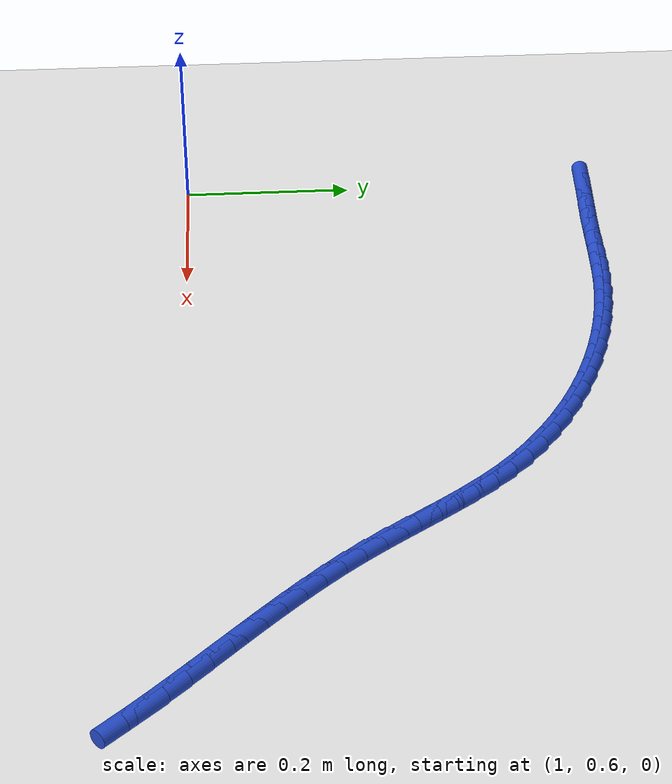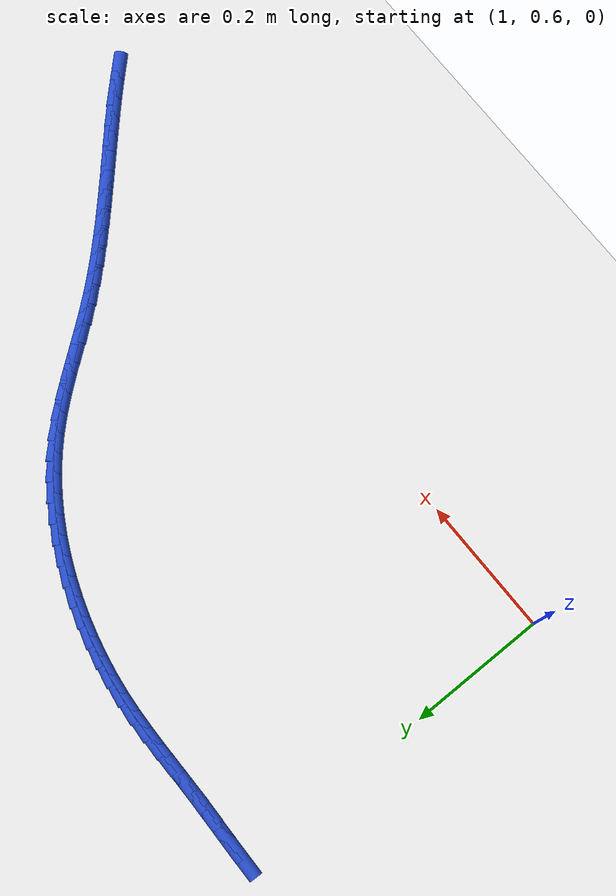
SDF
<sdf version="1.6">
 <world name="default">
  <model name="ground_plane">
   <static>1</static>
   <link name="link">
    <collision name="collision">
     <geometry><plane><normal>0 0 1</normal><size>100 100</size></plane></geometry>
     <surface><friction><ode><mu>100</mu><mu2>50</mu2></ode></friction></surface>
    </collision>
    <visual name="visual">
     <cast_shadows>0</cast_shadows>
     <geometry><plane><normal>0 0 1</normal><size>100 100</size></plane></geometry>
     <material>
      <script><uri>file://media/materials/scripts/gazebo.material</uri><name>Gazebo/WhiteGlow</name></script>
     </material>
    </visual>
   </link>
  </model>
  <model name="line">
   <link name="link_58">
    <pose>1.0199575699789516 1.0951428536316274 0.01 0 1.57 -0.035781900107793495</pose>
    <collision name="collision">
     <geometry><cylinder><radius>0.01</radius><length>0.08</length></cylinder></geometry>
    </collision>
    <visual name="visual">
     <material>
      <script><name>Gazebo/Blue</name><uri>file://media/materials/scripts/gazebo.material</uri></script>
     </material>
     <geometry><cylinder><radius>0.01</radius><length>0.08</length></cylinder></geometry>
    </visual>
   </link>
   <link name="link_59">
    <pose>1.0486025732911959 1.0941174433210548 0.01 0 1.57 -0.04221607428798749</pose>
    <collision name="collision">
     <geometry><cylinder><radius>0.01</radius><length>0.08</length></cylinder></geometry>
    </collision>
    <visual name="visual">
     <material>
      <script><name>Gazebo/Blue</name><uri>file://media/materials/scripts/gazebo.material</uri></script>
     </material>
     <geometry><cylinder><radius>0.01</radius><length>0.08</length></cylinder></geometry>
    </visual>
   </link>
   <link name="link_60">
    <pose>1.0772323687105632 1.0929080872285022 0.01 0 1.57 -0.0401360436025834</pose>
    <collision name="collision">
     <geometry><cylinder><radius>0.01</radius><length>0.08</length></cylinder></geometry>
    </collision>
    <visual name="visual">
     <material>
      <script><name>Gazebo/Blue</name><uri>file://media/materials/scripts/gazebo.material</uri></script>
     </material>
     <geometry><cylinder><radius>0.01</radius><length>0.08</length></cylinder></geometry>
    </visual>
   </link>
   <link name="link_61">
    <pose>1.1057698132064757 1.0917620916836417 0.01 0 1.57 -0.02960711799082537</pose>
    <collision name="collision">
     <geometry><cylinder><radius>0.01</radius><length>0.08</length></cylinder></geometry>
    </collision>
    <visual name="visual">
     <material>
      <script><name>Gazebo/Blue</name><uri>file://media/materials/scripts/gazebo.material</uri></script>
     </material>
     <geometry><cylinder><radius>0.01</radius><length>0.08</length></cylinder></geometry>
    </visual>
   </link>
   <link name="link_62">
    <pose>1.1341389333476963 1.0909219182885102 0.01 0 1.57 -0.018696714109490135</pose>
    <collision name="collision">
     <geometry><cylinder><radius>0.01</radius><length>0.08</length></cylinder></geometry>
    </collision>
    <visual name="visual">
     <material>
      <script><name>Gazebo/Blue</name><uri>file://media/materials/scripts/gazebo.material</uri></script>
     </material>
     <geometry><cylinder><radius>0.01</radius><length>0.08</length></cylinder></geometry>
    </visual>
   </link>
   <link name="link_63">
    <pose>1.1623205066900044 1.0903949540640205 0.01 0 1.57 -0.019313266174215596</pose>
    <collision name="collision">
     <geometry><cylinder><radius>0.01</radius><length>0.08</length></cylinder></geometry>
    </collision>
    <visual name="visual">
     <material>
      <script><name>Gazebo/Blue</name><uri>file://media/materials/scripts/gazebo.material</uri></script>
     </material>
     <geometry><cylinder><radius>0.01</radius><length>0.08</length></cylinder></geometry>
    </visual>
   </link>
   <link name="link_64">
    <pose>1.1903763179303777 1.089853037333406 0.01 0 1.57 -0.032518358520695255</pose>
    <collision name="collision">
     <geometry><cylinder><radius>0.01</radius><length>0.08</length></cylinder></geometry>
    </collision>
    <visual name="visual">
     <material>
      <script><name>Gazebo/Blue</name><uri>file://media/materials/scripts/gazebo.material</uri></script>
     </material>
     <geometry><cylinder><radius>0.01</radius><length>0.08</length></cylinder></geometry>
    </visual>
   </link>
   <link name="link_65">
    <pose>1.2183743660079622 1.0889422657156207 0.01 0 1.57 -0.058257066828256696</pose>
    <collision name="collision">
     <geometry><cylinder><radius>0.01</radius><length>0.08</length></cylinder></geometry>
    </collision>
    <visual name="visual">
     <material>
      <script><name>Gazebo/Blue</name><uri>file://media/materials/scripts/gazebo.material</uri></script>
     </material>
     <geometry><cylinder><radius>0.01</radius><length>0.08</length></cylinder></geometry>
    </visual>
   </link>
   <link name="link_66">
    <pose>1.2463826498619033 1.0873087368296181 0.01 0 1.57 -0.09613697446471628</pose>
    <collision name="collision">
     <geometry><cylinder><radius>0.01</radius><length>0.08</length></cylinder></geometry>
    </collision>
    <visual name="visual">
     <material>
      <script><name>Gazebo/Blue</name><uri>file://media/materials/scripts/gazebo.material</uri></script>
     </material>
     <geometry><cylinder><radius>0.01</radius><length>0.08</length></cylinder></geometry>
    </visual>
   </link>
   <link name="link_67">
    <pose>1.274468266371643 1.0846003214747972 0.01 0 1.57 -0.1413670093650362</pose>
    <collision name="collision">
     <geometry><cylinder><radius>0.01</radius><length>0.08</length></cylinder></geometry>
    </collision>
    <visual name="visual">
     <material>
      <script><name>Gazebo/Blue</name><uri>file://media/materials/scripts/gazebo.material</uri></script>
     </material>
     <geometry><cylinder><radius>0.01</radius><length>0.08</length></cylinder></geometry>
    </visual>
   </link>
   <link name="link_68">
    <pose>1.3026336882772702 1.080591922242199 0.01 0 1.57 -0.18696988690290806</pose>
    <collision name="collision">
     <geometry><cylinder><radius>0.01</radius><length>0.08</length></cylinder></geometry>
    </collision>
    <visual name="visual">
     <material>
      <script><name>Gazebo/Blue</name><uri>file://media/materials/scripts/gazebo.material</uri></script>
     </material>
     <geometry><cylinder><radius>0.01</radius><length>0.08</length></cylinder></geometry>
    </visual>
   </link>
   <link name="link_69">
    <pose>1.330774665438915 1.0752682270876732 0.01 0 1.57 -0.23264285344873262</pose>
    <collision name="collision">
     <geometry><cylinder><radius>0.01</radius><length>0.08</length></cylinder></geometry>
    </collision>
    <visual name="visual">
     <material>
      <script><name>Gazebo/Blue</name><uri>file://media/materials/scripts/gazebo.material</uri></script>
     </material>
     <geometry><cylinder><radius>0.01</radius><length>0.08</length></cylinder></geometry>
    </visual>
   </link>
   <link name="link_70">
    <pose>1.3587769558761416 1.0686335649467695 0.01 0 1.57 -0.2787297673906005</pose>
    <collision name="collision">
     <geometry><cylinder><radius>0.01</radius><length>0.08</length></cylinder></geometry>
    </collision>
    <visual name="visual">
     <material>
      <script><name>Gazebo/Blue</name><uri>file://media/materials/scripts/gazebo.material</uri></script>
     </material>
     <geometry><cylinder><radius>0.01</radius><length>0.08</length></cylinder></geometry>
    </visual>
   </link>
   <link name="link_71">
    <pose>1.386526317608513 1.0606922647550359 0.01 0 1.57 -0.32556535346390403</pose>
    <collision name="collision">
     <geometry><cylinder><radius>0.01</radius><length>0.08</length></cylinder></geometry>
    </collision>
    <visual name="visual">
     <material>
      <script><name>Gazebo/Blue</name><uri>file://media/materials/scripts/gazebo.material</uri></script>
     </material>
     <geometry><cylinder><radius>0.01</radius><length>0.08</length></cylinder></geometry>
    </visual>
   </link>
   <link name="link_72">
    <pose>1.4139085086555927 1.0514486554480214 0.01 0 1.57 -0.3734775712281659</pose>
    <collision name="collision">
     <geometry><cylinder><radius>0.01</radius><length>0.08</length></cylinder></geometry>
    </collision>
    <visual name="visual">
     <material>
      <script><name>Gazebo/Blue</name><uri>file://media/materials/scripts/gazebo.material</uri></script>
     </material>
     <geometry><cylinder><radius>0.01</radius><length>0.08</length></cylinder></geometry>
    </visual>
   </link>
   <link name="link_73">
    <pose>1.440809287036945 1.0409070659612738 0.01 0 1.57 -0.4227886436230414</pose>
    <collision name="collision">
     <geometry><cylinder><radius>0.01</radius><length>0.08</length></cylinder></geometry>
    </collision>
    <visual name="visual">
     <material>
      <script><name>Gazebo/Blue</name><uri>file://media/materials/scripts/gazebo.material</uri></script>
     </material>
     <geometry><cylinder><radius>0.01</radius><length>0.08</length></cylinder></geometry>
    </visual>
   </link>
   <link name="link_74">
    <pose>1.467114410772133 1.029071825230342 0.01 0 1.57 -0.47381438603906895</pose>
    <collision name="collision">
     <geometry><cylinder><radius>0.01</radius><length>0.08</length></cylinder></geometry>
    </collision>
    <visual name="visual">
     <material>
      <script><name>Gazebo/Blue</name><uri>file://media/materials/scripts/gazebo.material</uri></script>
     </material>
     <geometry><cylinder><radius>0.01</radius><length>0.08</length></cylinder></geometry>
    </visual>
   </link>
   <link name="link_75">
    <pose>1.4927096378807205 1.0159472621907746 0.01 0 1.57 -0.5268613911210545</pose>
    <collision name="collision">
     <geometry><cylinder><radius>0.01</radius><length>0.08</length></cylinder></geometry>
    </collision>
    <visual name="visual">
     <material>
      <script><name>Gazebo/Blue</name><uri>file://media/materials/scripts/gazebo.material</uri></script>
     </material>
     <geometry><cylinder><radius>0.01</radius><length>0.08</length></cylinder></geometry>
    </visual>
   </link>
   <link name="link_76">
    <pose>1.517480726382271 1.00153770577812 0.01 0 1.57 -0.5822215484820027</pose>
    <collision name="collision">
     <geometry><cylinder><radius>0.01</radius><length>0.08</length></cylinder></geometry>
    </collision>
    <visual name="visual">
     <material>
      <script><name>Gazebo/Blue</name><uri>file://media/materials/scripts/gazebo.material</uri></script>
     </material>
     <geometry><cylinder><radius>0.01</radius><length>0.08</length></cylinder></geometry>
    </visual>
   </link>
   <link name="link_77">
    <pose>1.5413134342963484 0.9858474849279267 0.01 0 1.57 -0.6401633476710498</pose>
    <collision name="collision">
     <geometry><cylinder><radius>0.01</radius><length>0.08</length></cylinder></geometry>
    </collision>
    <visual name="visual">
     <material>
      <script><name>Gazebo/Blue</name><uri>file://media/materials/scripts/gazebo.material</uri></script>
     </material>
     <geometry><cylinder><radius>0.01</radius><length>0.08</length></cylinder></geometry>
    </visual>
   </link>
   <link name="link_78">
    <pose>1.5640935196425159 0.968880928575743 0.01 0 1.57 -0.7009194819324006</pose>
    <collision name="collision">
     <geometry><cylinder><radius>0.01</radius><length>0.08</length></cylinder></geometry>
    </collision>
    <visual name="visual">
     <material>
      <script><name>Gazebo/Blue</name><uri>file://media/materials/scripts/gazebo.material</uri></script>
     </material>
     <geometry><cylinder><radius>0.01</radius><length>0.08</length></cylinder></geometry>
    </visual>
   </link>
   <link name="link_79">
    <pose>1.5857067404403375 0.9506423656571178 0.01 0 1.57 -0.764653347204239</pose>
    <collision name="collision">
     <geometry><cylinder><radius>0.01</radius><length>0.08</length></cylinder></geometry>
    </collision>
    <visual name="visual">
     <material>
      <script><name>Gazebo/Blue</name><uri>file://media/materials/scripts/gazebo.material</uri></script>
     </material>
     <geometry><cylinder><radius>0.01</radius><length>0.08</length></cylinder></geometry>
    </visual>
   </link>
   <link name="link_80">
    <pose>1.6060392605332807 0.9311364060752363 0.01 0 1.57 -0.8267359838469015</pose>
    <collision name="collision">
     <geometry><cylinder><radius>0.01</radius><length>0.08</length></cylinder></geometry>
    </collision>
    <visual name="visual">
     <material>
      <script><name>Gazebo/Blue</name><uri>file://media/materials/scripts/gazebo.material</uri></script>
     </material>
     <geometry><cylinder><radius>0.01</radius><length>0.08</length></cylinder></geometry>
    </visual>
   </link>
   <link name="link_81">
    <pose>1.625087760354476 0.9104441746568968 0.01 0 1.57 -0.8758821805450064</pose>
    <collision name="collision">
     <geometry><cylinder><radius>0.01</radius><length>0.08</length></cylinder></geometry>
    </collision>
    <visual name="visual">
     <material>
      <script><name>Gazebo/Blue</name><uri>file://media/materials/scripts/gazebo.material</uri></script>
     </material>
     <geometry><cylinder><radius>0.01</radius><length>0.08</length></cylinder></geometry>
    </visual>
   </link>
   <link name="link_82">
    <pose>1.64310876706386 0.888826698201205 0.01 0 1.57 -0.9103907295612471</pose>
    <collision name="collision">
     <geometry><cylinder><radius>0.01</radius><length>0.08</length></cylinder></geometry>
    </collision>
    <visual name="visual">
     <material>
      <script><name>Gazebo/Blue</name><uri>file://media/materials/scripts/gazebo.material</uri></script>
     </material>
     <geometry><cylinder><radius>0.01</radius><length>0.08</length></cylinder></geometry>
    </visual>
   </link>
   <link name="link_83">
    <pose>1.6603961197752557 0.8665708360208296 0.01 0 1.57 -0.930359745719579</pose>
    <collision name="collision">
     <geometry><cylinder><radius>0.01</radius><length>0.08</length></cylinder></geometry>
    </collision>
    <visual name="visual">
     <material>
      <script><name>Gazebo/Blue</name><uri>file://media/materials/scripts/gazebo.material</uri></script>
     </material>
     <geometry><cylinder><radius>0.01</radius><length>0.08</length></cylinder></geometry>
    </visual>
   </link>
   <link name="link_84">
    <pose>1.6772436576024878 0.8439634474284402 0.01 0 1.57 -0.9358886128954762</pose>
    <collision name="collision">
     <geometry><cylinder><radius>0.01</radius><length>0.08</length></cylinder></geometry>
    </collision>
    <visual name="visual">
     <material>
      <script><name>Gazebo/Blue</name><uri>file://media/materials/scripts/gazebo.material</uri></script>
     </material>
     <geometry><cylinder><radius>0.01</radius><length>0.08</length></cylinder></geometry>
    </visual>
   </link>
   <link name="link_85">
    <pose>1.69394521965938 0.8212913917367056 0.01 0 1.57 -0.9269524182687914</pose>
    <collision name="collision">
     <geometry><cylinder><radius>0.01</radius><length>0.08</length></cylinder></geometry>
    </collision>
    <visual name="visual">
     <material>
      <script><name>Gazebo/Blue</name><uri>file://media/materials/scripts/gazebo.material</uri></script>
     </material>
     <geometry><cylinder><radius>0.01</radius><length>0.08</length></cylinder></geometry>
    </visual>
   </link>
   <link name="link_86">
    <pose>1.7107946450597553 0.7988415282582952 0.01 0 1.57 -0.9033989431904076</pose>
    <collision name="collision">
     <geometry><cylinder><radius>0.01</radius><length>0.08</length></cylinder></geometry>
    </collision>
    <visual name="visual">
     <material>
      <script><name>Gazebo/Blue</name><uri>file://media/materials/scripts/gazebo.material</uri></script>
     </material>
     <geometry><cylinder><radius>0.01</radius><length>0.08</length></cylinder></geometry>
    </visual>
   </link>
   <link name="link_87">
    <pose>1.7280851609996637 0.7768999923186831 0.01 0 1.57 -0.8706474445221448</pose>
    <collision name="collision">
     <geometry><cylinder><radius>0.01</radius><length>0.08</length></cylinder></geometry>
    </collision>
    <visual name="visual">
     <material>
      <script><name>Gazebo/Blue</name><uri>file://media/materials/scripts/gazebo.material</uri></script>
     </material>
     <geometry><cylinder><radius>0.01</radius><length>0.08</length></cylinder></geometry>
    </visual>
   </link>
   <link name="link_88">
    <pose>1.7460060725045823 0.7556299642907484 0.01 0 1.57 -0.8408210769825334</pose>
    <collision name="collision">
     <geometry><cylinder><radius>0.01</radius><length>0.08</length></cylinder></geometry>
    </collision>
    <visual name="visual">
     <material>
      <script><name>Gazebo/Blue</name><uri>file://media/materials/scripts/gazebo.material</uri></script>
     </material>
     <geometry><cylinder><radius>0.01</radius><length>0.08</length></cylinder></geometry>
    </visual>
   </link>
   <link name="link_89">
    <pose>1.7645263683575965 0.7349339585798552 0.01 0 1.57 -0.8157130760389376</pose>
    <collision name="collision">
     <geometry><cylinder><radius>0.01</radius><length>0.08</length></cylinder></geometry>
    </collision>
    <visual name="visual">
     <material>
      <script><name>Gazebo/Blue</name><uri>file://media/materials/scripts/gazebo.material</uri></script>
     </material>
     <geometry><cylinder><radius>0.01</radius><length>0.08</length></cylinder></geometry>
    </visual>
   </link>
   <link name="link_90">
    <pose>1.7835869384316356 0.7146812445181874 0.01 0 1.57 -0.7954890029426652</pose>
    <collision name="collision">
     <geometry><cylinder><radius>0.01</radius><length>0.08</length></cylinder></geometry>
    </collision>
    <visual name="visual">
     <material>
      <script><name>Gazebo/Blue</name><uri>file://media/materials/scripts/gazebo.material</uri></script>
     </material>
     <geometry><cylinder><radius>0.01</radius><length>0.08</length></cylinder></geometry>
    </visual>
   </link>
   <link name="link_91">
    <pose>1.8031286725996318 0.6947410914379273 0.01 0 1.57 -0.7802256403079262</pose>
    <collision name="collision">
     <geometry><cylinder><radius>0.01</radius><length>0.08</length></cylinder></geometry>
    </collision>
    <visual name="visual">
     <material>
      <script><name>Gazebo/Blue</name><uri>file://media/materials/scripts/gazebo.material</uri></script>
     </material>
     <geometry><cylinder><radius>0.01</radius><length>0.08</length></cylinder></geometry>
    </visual>
   </link>
   <link name="link_92">
    <pose>1.8230924607345156 0.674982768671258 0.01 0 1.57 -0.7699248130962312</pose>
    <collision name="collision">
     <geometry><cylinder><radius>0.01</radius><length>0.08</length></cylinder></geometry>
    </collision>
    <visual name="visual">
     <material>
      <script><name>Gazebo/Blue</name><uri>file://media/materials/scripts/gazebo.material</uri></script>
     </material>
     <geometry><cylinder><radius>0.01</radius><length>0.08</length></cylinder></geometry>
    </visual>
   </link>
   <link name="link_93">
    <pose>1.843419192709218 0.6552755455503623 0.01 0 1.57 -0.764526246605155</pose>
    <collision name="collision">
     <geometry><cylinder><radius>0.01</radius><length>0.08</length></cylinder></geometry>
    </collision>
    <visual name="visual">
     <material>
      <script><name>Gazebo/Blue</name><uri>file://media/materials/scripts/gazebo.material</uri></script>
     </material>
     <geometry><cylinder><radius>0.01</radius><length>0.08</length></cylinder></geometry>
    </visual>
   </link>
   <link name="link_94">
    <pose>1.8640497583966706 0.635488691407424 0.01 0 1.57 -0.7639196949021512</pose>
    <collision name="collision">
     <geometry><cylinder><radius>0.01</radius><length>0.08</length></cylinder></geometry>
    </collision>
    <visual name="visual">
     <material>
      <script><name>Gazebo/Blue</name><uri>file://media/materials/scripts/gazebo.material</uri></script>
     </material>
     <geometry><cylinder><radius>0.01</radius><length>0.08</length></cylinder></geometry>
    </visual>
   </link>
   <link name="link_95">
    <pose>1.8849248703882868 0.6154915870467256 0.01 0 1.57 -0.7683137564306126</pose>
    <collision name="collision">
     <geometry><cylinder><radius>0.01</radius><length>0.08</length></cylinder></geometry>
    </collision>
    <visual name="visual">
     <material>
      <script><name>Gazebo/Blue</name><uri>file://media/materials/scripts/gazebo.material</uri></script>
     </material>
     <geometry><cylinder><radius>0.01</radius><length>0.08</length></cylinder></geometry>
    </visual>
   </link>
   <link name="link_96">
    <pose>1.9059413775646337 0.5951811941507261 0.01 0 1.57 -0.7784182780995194</pose>
    <collision name="collision">
     <geometry><cylinder><radius>0.01</radius><length>0.08</length></cylinder></geometry>
    </collision>
    <visual name="visual">
     <material>
      <script><name>Gazebo/Blue</name><uri>file://media/materials/scripts/gazebo.material</uri></script>
     </material>
     <geometry><cylinder><radius>0.01</radius><length>0.08</length></cylinder></geometry>
    </visual>
   </link>
   <link name="link_97">
    <pose>1.9268949828883468 0.5745180735180344 0.01 0 1.57 -0.7943664919388006</pose>
    <collision name="collision">
     <geometry><cylinder><radius>0.01</radius><length>0.08</length></cylinder></geometry>
    </collision>
    <visual name="visual">
     <material>
      <script><name>Gazebo/Blue</name><uri>file://media/materials/scripts/gazebo.material</uri></script>
     </material>
     <geometry><cylinder><radius>0.01</radius><length>0.08</length></cylinder></geometry>
    </visual>
   </link>
   <link name="link_98">
    <pose>1.9475671803752537 0.5534717203311333 0.01 0 1.57 -0.8163211268552919</pose>
    <collision name="collision">
     <geometry><cylinder><radius>0.01</radius><length>0.08</length></cylinder></geometry>
    </collision>
    <visual name="visual">
     <material>
      <script><name>Gazebo/Blue</name><uri>file://media/materials/scripts/gazebo.material</uri></script>
     </material>
     <geometry><cylinder><radius>0.01</radius><length>0.08</length></cylinder></geometry>
    </visual>
   </link>
  </model>
 </world>
</sdf>
